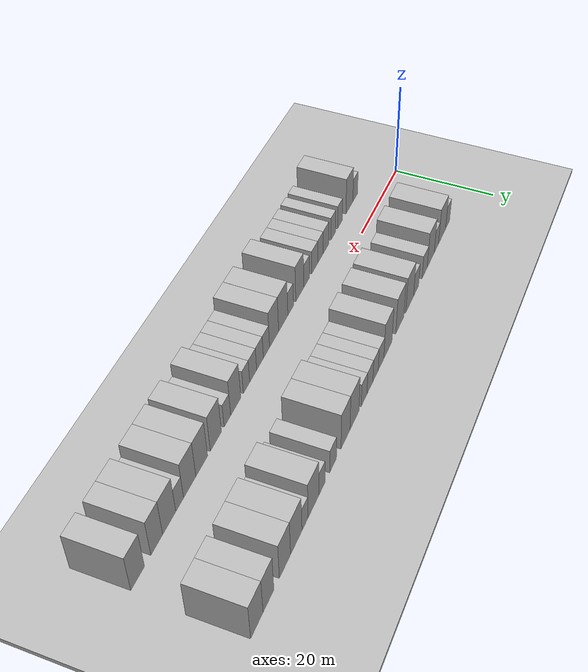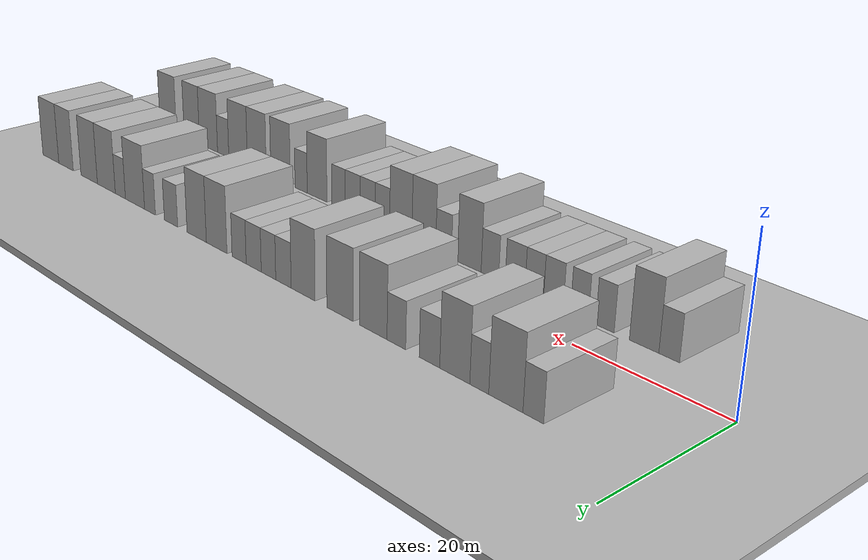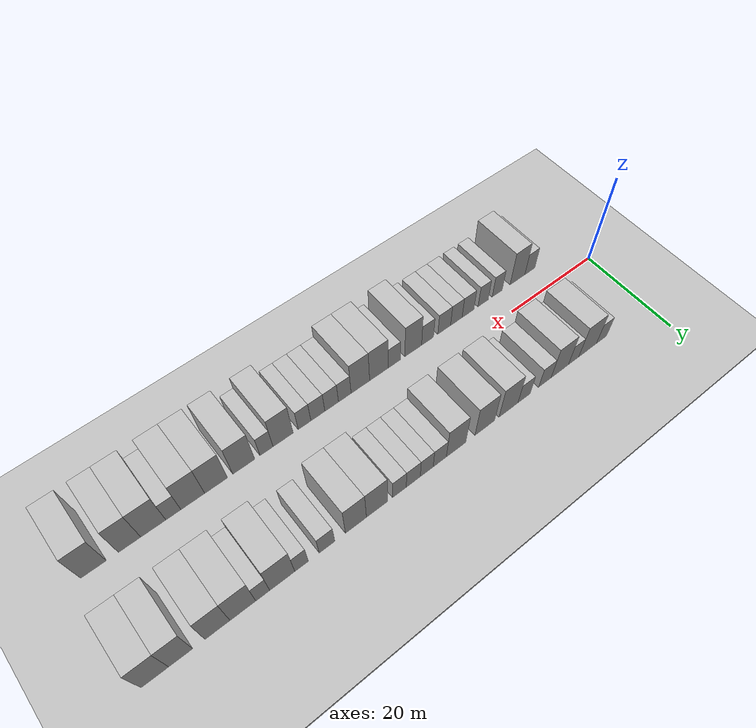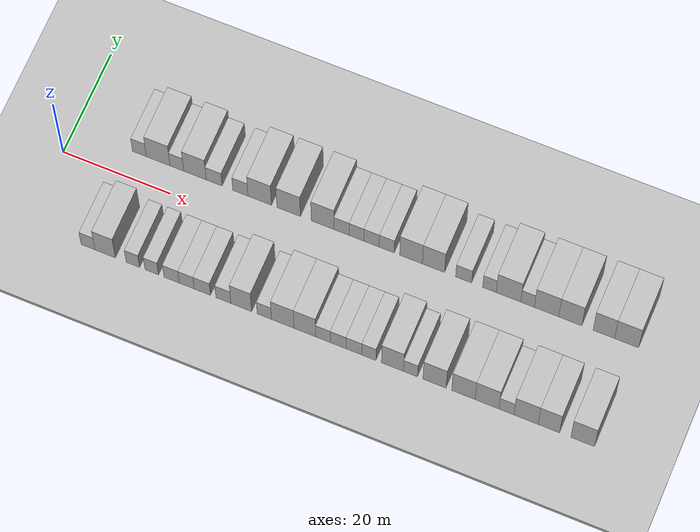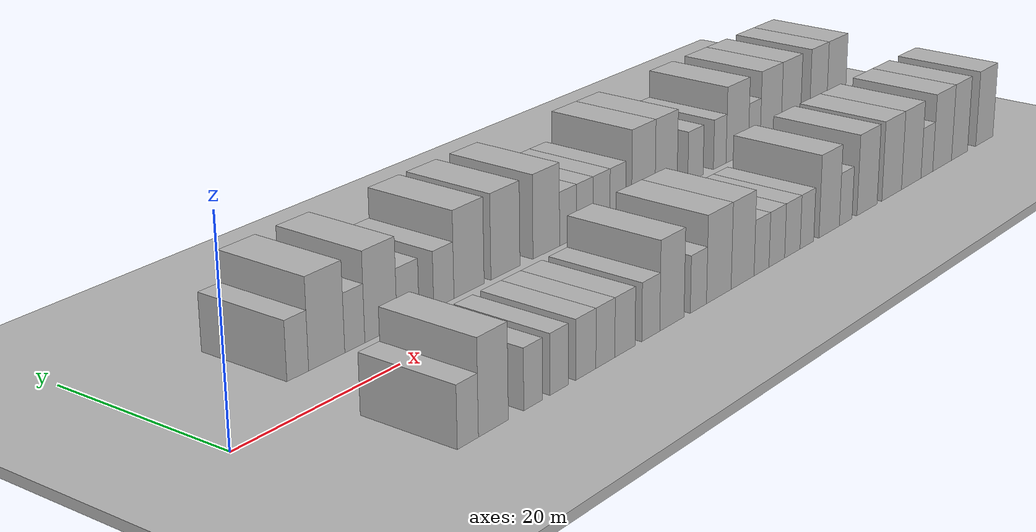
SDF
<sdf version="1.6">
 <world name="default">
  <include><name>ground_plane_1</name><uri>model://HANNAS_ground_plane</uri></include>
  <include>
   <name>ground_plane_2</name>
   <uri>model://HANNAS_ground_plane</uri>
   <pose>100 0 0  0 0 0</pose>
  </include>
  <model name="building_1">
   <static>1</static>
   <pose>12.2993 9.5000 0 0.000000 0.000000 1.570796</pose>
   <link name="link">
    <pose>0 0 3.00 0 0 0</pose>
    <collision name="collision"><geometry><box><size>10.0000 2.5986 6.0000</size></box></geometry></collision>
    <visual name="visual">
     <cast_shadows>0</cast_shadows>
     <geometry><box><size>10.0000 2.5986 6.0000</size></box></geometry>
     <material>
      <script>
       <uri>model://HANNAS_wall/materials/scripts</uri>
       <uri>model://HANNAS_wall/materials/textures</uri>
       <name>vrc/HANNAS_wall</name>
      </script>
     </material>
    </visual>
   </link>
  </model>
  <model name="building_2">
   <static>1</static>
   <pose>15.8166 9.5000 0 0.000000 0.000000 1.570796</pose>
   <link name="link">
    <pose>0 0 4.50 0 0 0</pose>
    <collision name="collision"><geometry><box><size>10.0000 4.4359 9.0000</size></box></geometry></collision>
    <visual name="visual">
     <cast_shadows>0</cast_shadows>
     <geometry><box><size>10.0000 4.4359 9.0000</size></box></geometry>
     <material>
      <script>
       <uri>model://HANNAS_wall/materials/scripts</uri>
       <uri>model://HANNAS_wall/materials/textures</uri>
       <name>vrc/HANNAS_wall</name>
      </script>
     </material>
    </visual>
   </link>
  </model>
  <model name="building_3">
   <static>1</static>
   <pose>19.3068 9.5000 0 0.000000 0.000000 1.570796</pose>
   <link name="link">
    <pose>0 0 3.00 0 0 0</pose>
    <collision name="collision"><geometry><box><size>10.0000 2.5445 6.0000</size></box></geometry></collision>
    <visual name="visual">
     <cast_shadows>0</cast_shadows>
     <geometry><box><size>10.0000 2.5445 6.0000</size></box></geometry>
     <material>
      <script>
       <uri>model://HANNAS_wall/materials/scripts</uri>
       <uri>model://HANNAS_wall/materials/textures</uri>
       <name>vrc/HANNAS_wall</name>
      </script>
     </material>
    </visual>
   </link>
  </model>
  <model name="building_4">
   <static>1</static>
   <pose>22.6740 9.5000 0 0.000000 0.000000 1.570796</pose>
   <link name="link">
    <pose>0 0 4.50 0 0 0</pose>
    <collision name="collision"><geometry><box><size>10.0000 4.1901 9.0000</size></box></geometry></collision>
    <visual name="visual">
     <cast_shadows>0</cast_shadows>
     <geometry><box><size>10.0000 4.1901 9.0000</size></box></geometry>
     <material>
      <script>
       <uri>model://HANNAS_wall/materials/scripts</uri>
       <uri>model://HANNAS_wall/materials/textures</uri>
       <name>vrc/HANNAS_wall</name>
      </script>
     </material>
    </visual>
   </link>
  </model>
  <model name="building_5">
   <static>1</static>
   <pose>26.2498 9.5000 0 0.000000 0.000000 1.570796</pose>
   <link name="link">
    <pose>0 0 3.00 0 0 0</pose>
    <collision name="collision"><geometry><box><size>10.0000 2.9615 6.0000</size></box></geometry></collision>
    <visual name="visual">
     <cast_shadows>0</cast_shadows>
     <geometry><box><size>10.0000 2.9615 6.0000</size></box></geometry>
     <material>
      <script>
       <uri>model://HANNAS_wall/materials/scripts</uri>
       <uri>model://HANNAS_wall/materials/textures</uri>
       <name>vrc/HANNAS_wall</name>
      </script>
     </material>
    </visual>
   </link>
  </model>
  <model name="building_6">
   <static>1</static>
   <pose>31.1484 9.5000 0 0.000000 0.000000 1.570796</pose>
   <link name="link">
    <pose>0 0 3.00 0 0 0</pose>
    <collision name="collision"><geometry><box><size>10.0000 2.8357 6.0000</size></box></geometry></collision>
    <visual name="visual">
     <cast_shadows>0</cast_shadows>
     <geometry><box><size>10.0000 2.8357 6.0000</size></box></geometry>
     <material>
      <script>
       <uri>model://HANNAS_wall/materials/scripts</uri>
       <uri>model://HANNAS_wall/materials/textures</uri>
       <name>vrc/HANNAS_wall</name>
      </script>
     </material>
    </visual>
   </link>
  </model>
  <model name="building_7">
   <static>1</static>
   <pose>34.7326 9.5000 0 0.000000 0.000000 1.570796</pose>
   <link name="link">
    <pose>0 0 4.50 0 0 0</pose>
    <collision name="collision"><geometry><box><size>10.0000 4.3327 9.0000</size></box></geometry></collision>
    <visual name="visual">
     <cast_shadows>0</cast_shadows>
     <geometry><box><size>10.0000 4.3327 9.0000</size></box></geometry>
     <material>
      <script>
       <uri>model://HANNAS_wall/materials/scripts</uri>
       <uri>model://HANNAS_wall/materials/textures</uri>
       <name>vrc/HANNAS_wall</name>
      </script>
     </material>
    </visual>
   </link>
  </model>
  <model name="building_8">
   <static>1</static>
   <pose>40.0762 9.5000 0 0.000000 0.000000 1.570796</pose>
   <link name="link">
    <pose>0 0 4.50 0 0 0</pose>
    <collision name="collision"><geometry><box><size>10.0000 4.3544 9.0000</size></box></geometry></collision>
    <visual name="visual">
     <cast_shadows>0</cast_shadows>
     <geometry><box><size>10.0000 4.3544 9.0000</size></box></geometry>
     <material>
      <script>
       <uri>model://HANNAS_wall/materials/scripts</uri>
       <uri>model://HANNAS_wall/materials/textures</uri>
       <name>vrc/HANNAS_wall</name>
      </script>
     </material>
    </visual>
   </link>
  </model>
  <model name="building_9">
   <static>1</static>
   <pose>46.3475 9.5000 0 0.000000 0.000000 1.570796</pose>
   <link name="link">
    <pose>0 0 4.50 0 0 0</pose>
    <collision name="collision"><geometry><box><size>10.0000 4.1883 9.0000</size></box></geometry></collision>
    <visual name="visual">
     <cast_shadows>0</cast_shadows>
     <geometry><box><size>10.0000 4.1883 9.0000</size></box></geometry>
     <material>
      <script>
       <uri>model://HANNAS_wall/materials/scripts</uri>
       <uri>model://HANNAS_wall/materials/textures</uri>
       <name>vrc/HANNAS_wall</name>
      </script>
     </material>
    </visual>
   </link>
  </model>
  <model name="building_10">
   <static>1</static>
   <pose>49.8299 9.5000 0 0.000000 0.000000 1.570796</pose>
   <link name="link">
    <pose>0 0 3.00 0 0 0</pose>
    <collision name="collision"><geometry><box><size>10.0000 2.7763 6.0000</size></box></geometry></collision>
    <visual name="visual">
     <cast_shadows>0</cast_shadows>
     <geometry><box><size>10.0000 2.7763 6.0000</size></box></geometry>
     <material>
      <script>
       <uri>model://HANNAS_wall/materials/scripts</uri>
       <uri>model://HANNAS_wall/materials/textures</uri>
       <name>vrc/HANNAS_wall</name>
      </script>
     </material>
    </visual>
   </link>
  </model>
  <model name="building_11">
   <static>1</static>
   <pose>52.5559 9.5000 0 0.000000 0.000000 1.570796</pose>
   <link name="link">
    <pose>0 0 3.00 0 0 0</pose>
    <collision name="collision"><geometry><box><size>10.0000 2.6757 6.0000</size></box></geometry></collision>
    <visual name="visual">
     <cast_shadows>0</cast_shadows>
     <geometry><box><size>10.0000 2.6757 6.0000</size></box></geometry>
     <material>
      <script>
       <uri>model://HANNAS_wall/materials/scripts</uri>
       <uri>model://HANNAS_wall/materials/textures</uri>
       <name>vrc/HANNAS_wall</name>
      </script>
     </material>
    </visual>
   </link>
  </model>
  <model name="building_12">
   <static>1</static>
   <pose>55.3262 9.5000 0 0.000000 0.000000 1.570796</pose>
   <link name="link">
    <pose>0 0 3.00 0 0 0</pose>
    <collision name="collision"><geometry><box><size>10.0000 2.8649 6.0000</size></box></geometry></collision>
    <visual name="visual">
     <cast_shadows>0</cast_shadows>
     <geometry><box><size>10.0000 2.8649 6.0000</size></box></geometry>
     <material>
      <script>
       <uri>model://HANNAS_wall/materials/scripts</uri>
       <uri>model://HANNAS_wall/materials/textures</uri>
       <name>vrc/HANNAS_wall</name>
      </script>
     </material>
    </visual>
   </link>
  </model>
  <model name="building_13">
   <static>1</static>
   <pose>58.1274 9.5000 0 0.000000 0.000000 1.570796</pose>
   <link name="link">
    <pose>0 0 3.00 0 0 0</pose>
    <collision name="collision"><geometry><box><size>10.0000 2.7375 6.0000</size></box></geometry></collision>
    <visual name="visual">
     <cast_shadows>0</cast_shadows>
     <geometry><box><size>10.0000 2.7375 6.0000</size></box></geometry>
     <material>
      <script>
       <uri>model://HANNAS_wall/materials/scripts</uri>
       <uri>model://HANNAS_wall/materials/textures</uri>
       <name>vrc/HANNAS_wall</name>
      </script>
     </material>
    </visual>
   </link>
  </model>
  <model name="building_14">
   <static>1</static>
   <pose>62.5772 9.5000 0 0.000000 0.000000 1.570796</pose>
   <link name="link">
    <pose>0 0 4.50 0 0 0</pose>
    <collision name="collision"><geometry><box><size>10.0000 4.1623 9.0000</size></box></geometry></collision>
    <visual name="visual">
     <cast_shadows>0</cast_shadows>
     <geometry><box><size>10.0000 4.1623 9.0000</size></box></geometry>
     <material>
      <script>
       <uri>model://HANNAS_wall/materials/scripts</uri>
       <uri>model://HANNAS_wall/materials/textures</uri>
       <name>vrc/HANNAS_wall</name>
      </script>
     </material>
    </visual>
   </link>
  </model>
  <model name="building_15">
   <static>1</static>
   <pose>66.6766 9.5000 0 0.000000 0.000000 1.570796</pose>
   <link name="link">
    <pose>0 0 4.50 0 0 0</pose>
    <collision name="collision"><geometry><box><size>10.0000 4.0365 9.0000</size></box></geometry></collision>
    <visual name="visual">
     <cast_shadows>0</cast_shadows>
     <geometry><box><size>10.0000 4.0365 9.0000</size></box></geometry>
     <material>
      <script>
       <uri>model://HANNAS_wall/materials/scripts</uri>
       <uri>model://HANNAS_wall/materials/textures</uri>
       <name>vrc/HANNAS_wall</name>
      </script>
     </material>
    </visual>
   </link>
  </model>
  <model name="building_16">
   <static>1</static>
   <pose>72.1498 9.5000 0 0.000000 0.000000 1.570796</pose>
   <link name="link">
    <pose>0 0 3.00 0 0 0</pose>
    <collision name="collision"><geometry><box><size>10.0000 2.9097 6.0000</size></box></geometry></collision>
    <visual name="visual">
     <cast_shadows>0</cast_shadows>
     <geometry><box><size>10.0000 2.9097 6.0000</size></box></geometry>
     <material>
      <script>
       <uri>model://HANNAS_wall/materials/scripts</uri>
       <uri>model://HANNAS_wall/materials/textures</uri>
       <name>vrc/HANNAS_wall</name>
      </script>
     </material>
    </visual>
   </link>
  </model>
  <model name="building_17">
   <static>1</static>
   <pose>76.8367 9.5000 0 0.000000 0.000000 1.570796</pose>
   <link name="link">
    <pose>0 0 3.00 0 0 0</pose>
    <collision name="collision"><geometry><box><size>10.0000 2.4643 6.0000</size></box></geometry></collision>
    <visual name="visual">
     <cast_shadows>0</cast_shadows>
     <geometry><box><size>10.0000 2.4643 6.0000</size></box></geometry>
     <material>
      <script>
       <uri>model://HANNAS_wall/materials/scripts</uri>
       <uri>model://HANNAS_wall/materials/textures</uri>
       <name>vrc/HANNAS_wall</name>
      </script>
     </material>
    </visual>
   </link>
  </model>
  <model name="building_18">
   <static>1</static>
   <pose>80.3008 9.5000 0 0.000000 0.000000 1.570796</pose>
   <link name="link">
    <pose>0 0 4.50 0 0 0</pose>
    <collision name="collision"><geometry><box><size>10.0000 4.4638 9.0000</size></box></geometry></collision>
    <visual name="visual">
     <cast_shadows>0</cast_shadows>
     <geometry><box><size>10.0000 4.4638 9.0000</size></box></geometry>
     <material>
      <script>
       <uri>model://HANNAS_wall/materials/scripts</uri>
       <uri>model://HANNAS_wall/materials/textures</uri>
       <name>vrc/HANNAS_wall</name>
      </script>
     </material>
    </visual>
   </link>
  </model>
  <model name="building_19">
   <static>1</static>
   <pose>83.7468 9.5000 0 0.000000 0.000000 1.570796</pose>
   <link name="link">
    <pose>0 0 3.00 0 0 0</pose>
    <collision name="collision"><geometry><box><size>10.0000 2.4282 6.0000</size></box></geometry></collision>
    <visual name="visual">
     <cast_shadows>0</cast_shadows>
     <geometry><box><size>10.0000 2.4282 6.0000</size></box></geometry>
     <material>
      <script>
       <uri>model://HANNAS_wall/materials/scripts</uri>
       <uri>model://HANNAS_wall/materials/textures</uri>
       <name>vrc/HANNAS_wall</name>
      </script>
     </material>
    </visual>
   </link>
  </model>
  <model name="building_20">
   <static>1</static>
   <pose>87.1645 9.5000 0 0.000000 0.000000 1.570796</pose>
   <link name="link">
    <pose>0 0 4.50 0 0 0</pose>
    <collision name="collision"><geometry><box><size>10.0000 4.4072 9.0000</size></box></geometry></collision>
    <visual name="visual">
     <cast_shadows>0</cast_shadows>
     <geometry><box><size>10.0000 4.4072 9.0000</size></box></geometry>
     <material>
      <script>
       <uri>model://HANNAS_wall/materials/scripts</uri>
       <uri>model://HANNAS_wall/materials/textures</uri>
       <name>vrc/HANNAS_wall</name>
      </script>
     </material>
    </visual>
   </link>
  </model>
  <model name="building_21">
   <static>1</static>
   <pose>91.4598 9.5000 0 0.000000 0.000000 1.570796</pose>
   <link name="link">
    <pose>0 0 4.50 0 0 0</pose>
    <collision name="collision"><geometry><box><size>10.0000 4.1834 9.0000</size></box></geometry></collision>
    <visual name="visual">
     <cast_shadows>0</cast_shadows>
     <geometry><box><size>10.0000 4.1834 9.0000</size></box></geometry>
     <material>
      <script>
       <uri>model://HANNAS_wall/materials/scripts</uri>
       <uri>model://HANNAS_wall/materials/textures</uri>
       <name>vrc/HANNAS_wall</name>
      </script>
     </material>
    </visual>
   </link>
  </model>
  <model name="building_22">
   <static>1</static>
   <pose>97.4769 9.5000 0 0.000000 0.000000 1.570796</pose>
   <link name="link">
    <pose>0 0 4.50 0 0 0</pose>
    <collision name="collision"><geometry><box><size>10.0000 3.8507 9.0000</size></box></geometry></collision>
    <visual name="visual">
     <cast_shadows>0</cast_shadows>
     <geometry><box><size>10.0000 3.8507 9.0000</size></box></geometry>
     <material>
      <script>
       <uri>model://HANNAS_wall/materials/scripts</uri>
       <uri>model://HANNAS_wall/materials/textures</uri>
       <name>vrc/HANNAS_wall</name>
      </script>
     </material>
    </visual>
   </link>
  </model>
  <model name="building_23">
   <static>1</static>
   <pose>101.5663 9.5000 0 0.000000 0.000000 1.570796</pose>
   <link name="link">
    <pose>0 0 4.50 0 0 0</pose>
    <collision name="collision"><geometry><box><size>10.0000 4.3280 9.0000</size></box></geometry></collision>
    <visual name="visual">
     <cast_shadows>0</cast_shadows>
     <geometry><box><size>10.0000 4.3280 9.0000</size></box></geometry>
     <material>
      <script>
       <uri>model://HANNAS_wall/materials/scripts</uri>
       <uri>model://HANNAS_wall/materials/textures</uri>
       <name>vrc/HANNAS_wall</name>
      </script>
     </material>
    </visual>
   </link>
  </model>
  <model name="building_48">
   <static>1</static>
   <pose>11.2887 -9.5000 0 0.000000 0.000000 1.570796</pose>
   <link name="link">
    <pose>0 0 3.00 0 0 0</pose>
    <collision name="collision"><geometry><box><size>10.0000 2.5773 6.0000</size></box></geometry></collision>
    <visual name="visual">
     <cast_shadows>0</cast_shadows>
     <geometry><box><size>10.0000 2.5773 6.0000</size></box></geometry>
     <material>
      <script>
       <uri>model://HANNAS_wall/materials/scripts</uri>
       <uri>model://HANNAS_wall/materials/textures</uri>
       <name>vrc/HANNAS_wall</name>
      </script>
     </material>
    </visual>
   </link>
  </model>
  <model name="building_49">
   <static>1</static>
   <pose>14.4605 -9.5000 0 0.000000 0.000000 1.570796</pose>
   <link name="link">
    <pose>0 0 4.50 0 0 0</pose>
    <collision name="collision"><geometry><box><size>10.0000 3.7664 9.0000</size></box></geometry></collision>
    <visual name="visual">
     <cast_shadows>0</cast_shadows>
     <geometry><box><size>10.0000 3.7664 9.0000</size></box></geometry>
     <material>
      <script>
       <uri>model://HANNAS_wall/materials/scripts</uri>
       <uri>model://HANNAS_wall/materials/textures</uri>
       <name>vrc/HANNAS_wall</name>
      </script>
     </material>
    </visual>
   </link>
  </model>
  <model name="building_50">
   <static>1</static>
   <pose>19.5843 -9.5000 0 0.000000 0.000000 1.570796</pose>
   <link name="link">
    <pose>0 0 3.00 0 0 0</pose>
    <collision name="collision"><geometry><box><size>10.0000 2.4811 6.0000</size></box></geometry></collision>
    <visual name="visual">
     <cast_shadows>0</cast_shadows>
     <geometry><box><size>10.0000 2.4811 6.0000</size></box></geometry>
     <material>
      <script>
       <uri>model://HANNAS_wall/materials/scripts</uri>
       <uri>model://HANNAS_wall/materials/textures</uri>
       <name>vrc/HANNAS_wall</name>
      </script>
     </material>
    </visual>
   </link>
  </model>
  <model name="building_51">
   <static>1</static>
   <pose>23.0734 -9.5000 0 0.000000 0.000000 1.570796</pose>
   <link name="link">
    <pose>0 0 3.00 0 0 0</pose>
    <collision name="collision"><geometry><box><size>10.0000 2.4972 6.0000</size></box></geometry></collision>
    <visual name="visual">
     <cast_shadows>0</cast_shadows>
     <geometry><box><size>10.0000 2.4972 6.0000</size></box></geometry>
     <material>
      <script>
       <uri>model://HANNAS_wall/materials/scripts</uri>
       <uri>model://HANNAS_wall/materials/textures</uri>
       <name>vrc/HANNAS_wall</name>
      </script>
     </material>
    </visual>
   </link>
  </model>
  <model name="building_52">
   <static>1</static>
   <pose>26.7437 -9.5000 0 0.000000 0.000000 1.570796</pose>
   <link name="link">
    <pose>0 0 3.00 0 0 0</pose>
    <collision name="collision"><geometry><box><size>10.0000 2.8434 6.0000</size></box></geometry></collision>
    <visual name="visual">
     <cast_shadows>0</cast_shadows>
     <geometry><box><size>10.0000 2.8434 6.0000</size></box></geometry>
     <material>
      <script>
       <uri>model://HANNAS_wall/materials/scripts</uri>
       <uri>model://HANNAS_wall/materials/textures</uri>
       <name>vrc/HANNAS_wall</name>
      </script>
     </material>
    </visual>
   </link>
  </model>
  <model name="building_53">
   <static>1</static>
   <pose>29.5321 -9.5000 0 0.000000 0.000000 1.570796</pose>
   <link name="link">
    <pose>0 0 3.00 0 0 0</pose>
    <collision name="collision"><geometry><box><size>10.0000 2.7334 6.0000</size></box></geometry></collision>
    <visual name="visual">
     <cast_shadows>0</cast_shadows>
     <geometry><box><size>10.0000 2.7334 6.0000</size></box></geometry>
     <material>
      <script>
       <uri>model://HANNAS_wall/materials/scripts</uri>
       <uri>model://HANNAS_wall/materials/textures</uri>
       <name>vrc/HANNAS_wall</name>
      </script>
     </material>
    </visual>
   </link>
  </model>
  <model name="building_54">
   <static>1</static>
   <pose>32.3926 -9.5000 0 0.000000 0.000000 1.570796</pose>
   <link name="link">
    <pose>0 0 3.00 0 0 0</pose>
    <collision name="collision"><geometry><box><size>10.0000 2.9876 6.0000</size></box></geometry></collision>
    <visual name="visual">
     <cast_shadows>0</cast_shadows>
     <geometry><box><size>10.0000 2.9876 6.0000</size></box></geometry>
     <material>
      <script>
       <uri>model://HANNAS_wall/materials/scripts</uri>
       <uri>model://HANNAS_wall/materials/textures</uri>
       <name>vrc/HANNAS_wall</name>
      </script>
     </material>
    </visual>
   </link>
  </model>
  <model name="building_55">
   <static>1</static>
   <pose>36.2590 -9.5000 0 0.000000 0.000000 1.570796</pose>
   <link name="link">
    <pose>0 0 3.00 0 0 0</pose>
    <collision name="collision"><geometry><box><size>10.0000 2.7454 6.0000</size></box></geometry></collision>
    <visual name="visual">
     <cast_shadows>0</cast_shadows>
     <geometry><box><size>10.0000 2.7454 6.0000</size></box></geometry>
     <material>
      <script>
       <uri>model://HANNAS_wall/materials/scripts</uri>
       <uri>model://HANNAS_wall/materials/textures</uri>
       <name>vrc/HANNAS_wall</name>
      </script>
     </material>
    </visual>
   </link>
  </model>
  <model name="building_56">
   <static>1</static>
   <pose>39.5368 -9.5000 0 0.000000 0.000000 1.570796</pose>
   <link name="link">
    <pose>0 0 4.50 0 0 0</pose>
    <collision name="collision"><geometry><box><size>10.0000 3.8101 9.0000</size></box></geometry></collision>
    <visual name="visual">
     <cast_shadows>0</cast_shadows>
     <geometry><box><size>10.0000 3.8101 9.0000</size></box></geometry>
     <material>
      <script>
       <uri>model://HANNAS_wall/materials/scripts</uri>
       <uri>model://HANNAS_wall/materials/textures</uri>
       <name>vrc/HANNAS_wall</name>
      </script>
     </material>
    </visual>
   </link>
  </model>
  <model name="building_57">
   <static>1</static>
   <pose>43.7540 -9.5000 0 0.000000 0.000000 1.570796</pose>
   <link name="link">
    <pose>0 0 3.00 0 0 0</pose>
    <collision name="collision"><geometry><box><size>10.0000 2.6242 6.0000</size></box></geometry></collision>
    <visual name="visual">
     <cast_shadows>0</cast_shadows>
     <geometry><box><size>10.0000 2.6242 6.0000</size></box></geometry>
     <material>
      <script>
       <uri>model://HANNAS_wall/materials/scripts</uri>
       <uri>model://HANNAS_wall/materials/textures</uri>
       <name>vrc/HANNAS_wall</name>
      </script>
     </material>
    </visual>
   </link>
  </model>
  <model name="building_58">
   <static>1</static>
   <pose>47.1212 -9.5000 0 0.000000 0.000000 1.570796</pose>
   <link name="link">
    <pose>0 0 4.50 0 0 0</pose>
    <collision name="collision"><geometry><box><size>10.0000 4.1103 9.0000</size></box></geometry></collision>
    <visual name="visual">
     <cast_shadows>0</cast_shadows>
     <geometry><box><size>10.0000 4.1103 9.0000</size></box></geometry>
     <material>
      <script>
       <uri>model://HANNAS_wall/materials/scripts</uri>
       <uri>model://HANNAS_wall/materials/textures</uri>
       <name>vrc/HANNAS_wall</name>
      </script>
     </material>
    </visual>
   </link>
  </model>
  <model name="building_59">
   <static>1</static>
   <pose>51.1539 -9.5000 0 0.000000 0.000000 1.570796</pose>
   <link name="link">
    <pose>0 0 4.50 0 0 0</pose>
    <collision name="collision"><geometry><box><size>10.0000 3.9550 9.0000</size></box></geometry></collision>
    <visual name="visual">
     <cast_shadows>0</cast_shadows>
     <geometry><box><size>10.0000 3.9550 9.0000</size></box></geometry>
     <material>
      <script>
       <uri>model://HANNAS_wall/materials/scripts</uri>
       <uri>model://HANNAS_wall/materials/textures</uri>
       <name>vrc/HANNAS_wall</name>
      </script>
     </material>
    </visual>
   </link>
  </model>
  <model name="building_60">
   <static>1</static>
   <pose>54.4540 -9.5000 0 0.000000 0.000000 1.570796</pose>
   <link name="link">
    <pose>0 0 3.00 0 0 0</pose>
    <collision name="collision"><geometry><box><size>10.0000 2.6453 6.0000</size></box></geometry></collision>
    <visual name="visual">
     <cast_shadows>0</cast_shadows>
     <geometry><box><size>10.0000 2.6453 6.0000</size></box></geometry>
     <material>
      <script>
       <uri>model://HANNAS_wall/materials/scripts</uri>
       <uri>model://HANNAS_wall/materials/textures</uri>
       <name>vrc/HANNAS_wall</name>
      </script>
     </material>
    </visual>
   </link>
  </model>
  <model name="building_61">
   <static>1</static>
   <pose>57.1894 -9.5000 0 0.000000 0.000000 1.570796</pose>
   <link name="link">
    <pose>0 0 3.00 0 0 0</pose>
    <collision name="collision"><geometry><box><size>10.0000 2.8256 6.0000</size></box></geometry></collision>
    <visual name="visual">
     <cast_shadows>0</cast_shadows>
     <geometry><box><size>10.0000 2.8256 6.0000</size></box></geometry>
     <material>
      <script>
       <uri>model://HANNAS_wall/materials/scripts</uri>
       <uri>model://HANNAS_wall/materials/textures</uri>
       <name>vrc/HANNAS_wall</name>
      </script>
     </material>
    </visual>
   </link>
  </model>
  <model name="building_62">
   <static>1</static>
   <pose>60.0285 -9.5000 0 0.000000 0.000000 1.570796</pose>
   <link name="link">
    <pose>0 0 3.00 0 0 0</pose>
    <collision name="collision"><geometry><box><size>10.0000 2.8525 6.0000</size></box></geometry></collision>
    <visual name="visual">
     <cast_shadows>0</cast_shadows>
     <geometry><box><size>10.0000 2.8525 6.0000</size></box></geometry>
     <material>
      <script>
       <uri>model://HANNAS_wall/materials/scripts</uri>
       <uri>model://HANNAS_wall/materials/textures</uri>
       <name>vrc/HANNAS_wall</name>
      </script>
     </material>
    </visual>
   </link>
  </model>
  <model name="building_63">
   <static>1</static>
   <pose>62.7379 -9.5000 0 0.000000 0.000000 1.570796</pose>
   <link name="link">
    <pose>0 0 3.00 0 0 0</pose>
    <collision name="collision"><geometry><box><size>10.0000 2.5663 6.0000</size></box></geometry></collision>
    <visual name="visual">
     <cast_shadows>0</cast_shadows>
     <geometry><box><size>10.0000 2.5663 6.0000</size></box></geometry>
     <material>
      <script>
       <uri>model://HANNAS_wall/materials/scripts</uri>
       <uri>model://HANNAS_wall/materials/textures</uri>
       <name>vrc/HANNAS_wall</name>
      </script>
     </material>
    </visual>
   </link>
  </model>
  <model name="building_64">
   <static>1</static>
   <pose>67.0095 -9.5000 0 0.000000 0.000000 1.570796</pose>
   <link name="link">
    <pose>0 0 4.50 0 0 0</pose>
    <collision name="collision"><geometry><box><size>10.0000 3.9770 9.0000</size></box></geometry></collision>
    <visual name="visual">
     <cast_shadows>0</cast_shadows>
     <geometry><box><size>10.0000 3.9770 9.0000</size></box></geometry>
     <material>
      <script>
       <uri>model://HANNAS_wall/materials/scripts</uri>
       <uri>model://HANNAS_wall/materials/textures</uri>
       <name>vrc/HANNAS_wall</name>
      </script>
     </material>
    </visual>
   </link>
  </model>
  <model name="building_65">
   <static>1</static>
   <pose>70.2606 -9.5000 0 0.000000 0.000000 1.570796</pose>
   <link name="link">
    <pose>0 0 3.00 0 0 0</pose>
    <collision name="collision"><geometry><box><size>10.0000 2.5252 6.0000</size></box></geometry></collision>
    <visual name="visual">
     <cast_shadows>0</cast_shadows>
     <geometry><box><size>10.0000 2.5252 6.0000</size></box></geometry>
     <material>
      <script>
       <uri>model://HANNAS_wall/materials/scripts</uri>
       <uri>model://HANNAS_wall/materials/textures</uri>
       <name>vrc/HANNAS_wall</name>
      </script>
     </material>
    </visual>
   </link>
  </model>
  <model name="building_66">
   <static>1</static>
   <pose>74.5976 -9.5000 0 0.000000 0.000000 1.570796</pose>
   <link name="link">
    <pose>0 0 4.50 0 0 0</pose>
    <collision name="collision"><geometry><box><size>10.0000 4.1489 9.0000</size></box></geometry></collision>
    <visual name="visual">
     <cast_shadows>0</cast_shadows>
     <geometry><box><size>10.0000 4.1489 9.0000</size></box></geometry>
     <material>
      <script>
       <uri>model://HANNAS_wall/materials/scripts</uri>
       <uri>model://HANNAS_wall/materials/textures</uri>
       <name>vrc/HANNAS_wall</name>
      </script>
     </material>
    </visual>
   </link>
  </model>
  <model name="building_67">
   <static>1</static>
   <pose>79.7714 -9.5000 0 0.000000 0.000000 1.570796</pose>
   <link name="link">
    <pose>0 0 4.50 0 0 0</pose>
    <collision name="collision"><geometry><box><size>10.0000 4.1987 9.0000</size></box></geometry></collision>
    <visual name="visual">
     <cast_shadows>0</cast_shadows>
     <geometry><box><size>10.0000 4.1987 9.0000</size></box></geometry>
     <material>
      <script>
       <uri>model://HANNAS_wall/materials/scripts</uri>
       <uri>model://HANNAS_wall/materials/textures</uri>
       <name>vrc/HANNAS_wall</name>
      </script>
     </material>
    </visual>
   </link>
  </model>
  <model name="building_68">
   <static>1</static>
   <pose>84.0096 -9.5000 0 0.000000 0.000000 1.570796</pose>
   <link name="link">
    <pose>0 0 4.50 0 0 0</pose>
    <collision name="collision"><geometry><box><size>10.0000 4.2777 9.0000</size></box></geometry></collision>
    <visual name="visual">
     <cast_shadows>0</cast_shadows>
     <geometry><box><size>10.0000 4.2777 9.0000</size></box></geometry>
     <material>
      <script>
       <uri>model://HANNAS_wall/materials/scripts</uri>
       <uri>model://HANNAS_wall/materials/textures</uri>
       <name>vrc/HANNAS_wall</name>
      </script>
     </material>
    </visual>
   </link>
  </model>
  <model name="building_69">
   <static>1</static>
   <pose>87.4733 -9.5000 0 0.000000 0.000000 1.570796</pose>
   <link name="link">
    <pose>0 0 3.00 0 0 0</pose>
    <collision name="collision"><geometry><box><size>10.0000 2.6498 6.0000</size></box></geometry></collision>
    <visual name="visual">
     <cast_shadows>0</cast_shadows>
     <geometry><box><size>10.0000 2.6498 6.0000</size></box></geometry>
     <material>
      <script>
       <uri>model://HANNAS_wall/materials/scripts</uri>
       <uri>model://HANNAS_wall/materials/textures</uri>
       <name>vrc/HANNAS_wall</name>
      </script>
     </material>
    </visual>
   </link>
  </model>
  <model name="building_70">
   <static>1</static>
   <pose>90.9698 -9.5000 0 0.000000 0.000000 1.570796</pose>
   <link name="link">
    <pose>0 0 4.50 0 0 0</pose>
    <collision name="collision"><geometry><box><size>10.0000 4.3431 9.0000</size></box></geometry></collision>
    <visual name="visual">
     <cast_shadows>0</cast_shadows>
     <geometry><box><size>10.0000 4.3431 9.0000</size></box></geometry>
     <material>
      <script>
       <uri>model://HANNAS_wall/materials/scripts</uri>
       <uri>model://HANNAS_wall/materials/textures</uri>
       <name>vrc/HANNAS_wall</name>
      </script>
     </material>
    </visual>
   </link>
  </model>
  <model name="building_71">
   <static>1</static>
   <pose>95.0424 -9.5000 0 0.000000 0.000000 1.570796</pose>
   <link name="link">
    <pose>0 0 4.50 0 0 0</pose>
    <collision name="collision"><geometry><box><size>10.0000 3.8021 9.0000</size></box></geometry></collision>
    <visual name="visual">
     <cast_shadows>0</cast_shadows>
     <geometry><box><size>10.0000 3.8021 9.0000</size></box></geometry>
     <material>
      <script>
       <uri>model://HANNAS_wall/materials/scripts</uri>
       <uri>model://HANNAS_wall/materials/textures</uri>
       <name>vrc/HANNAS_wall</name>
      </script>
     </material>
    </visual>
   </link>
  </model>
  <model name="building_72">
   <static>1</static>
   <pose>101.0509 -9.5000 0 0.000000 0.000000 1.570796</pose>
   <link name="link">
    <pose>0 0 4.50 0 0 0</pose>
    <collision name="collision"><geometry><box><size>10.0000 4.2150 9.0000</size></box></geometry></collision>
    <visual name="visual">
     <cast_shadows>0</cast_shadows>
     <geometry><box><size>10.0000 4.2150 9.0000</size></box></geometry>
     <material>
      <script>
       <uri>model://HANNAS_wall/materials/scripts</uri>
       <uri>model://HANNAS_wall/materials/textures</uri>
       <name>vrc/HANNAS_wall</name>
      </script>
     </material>
    </visual>
   </link>
  </model>
 </world>
</sdf>
